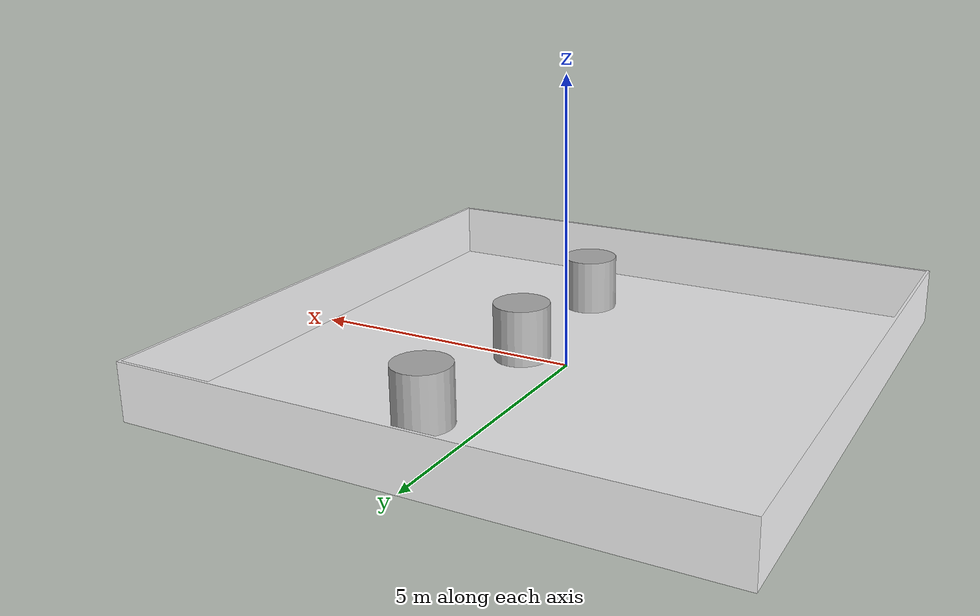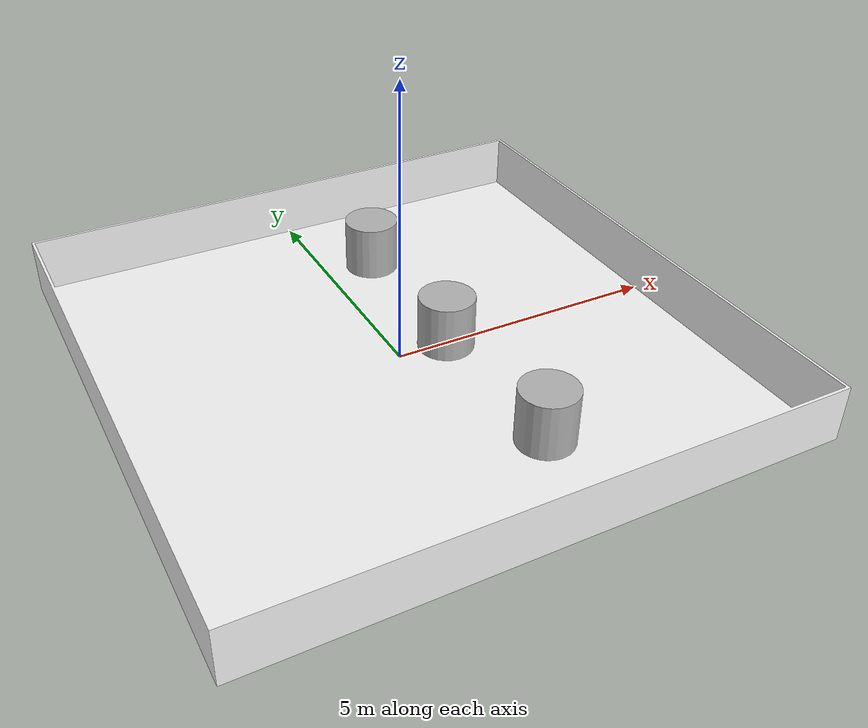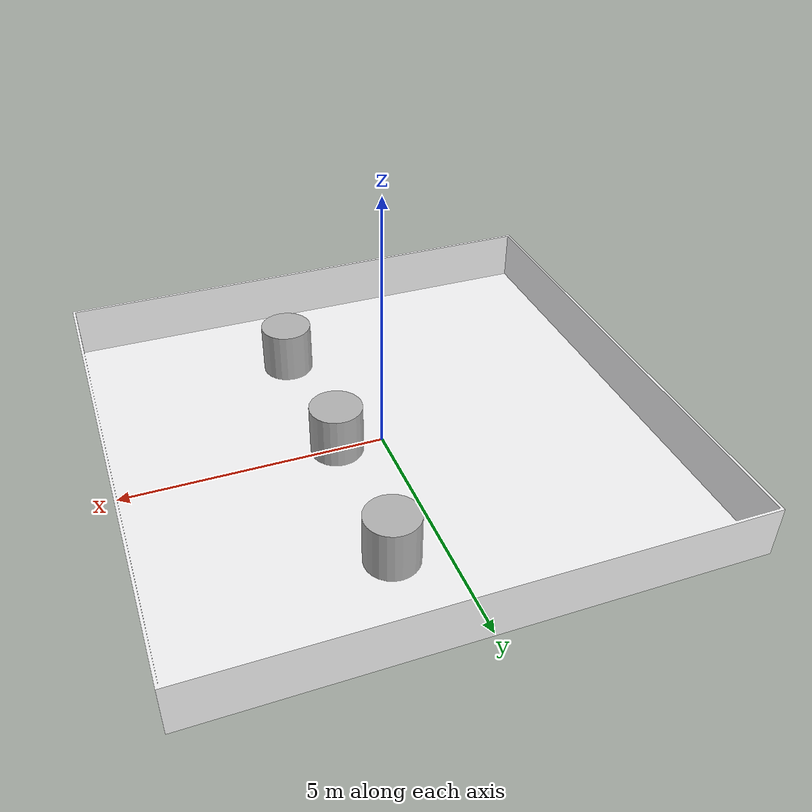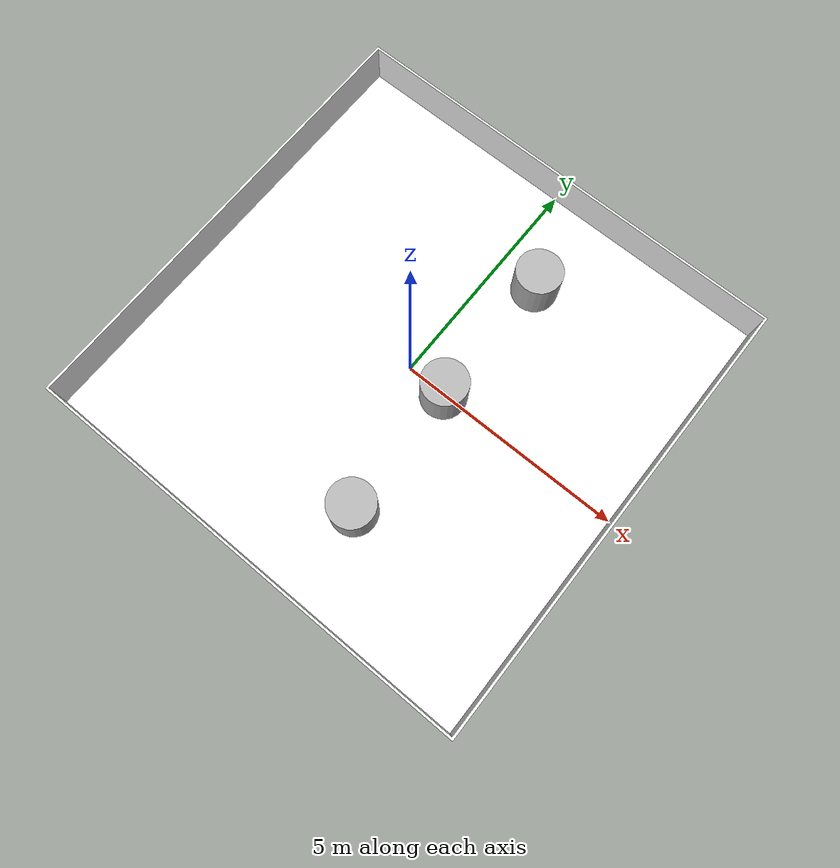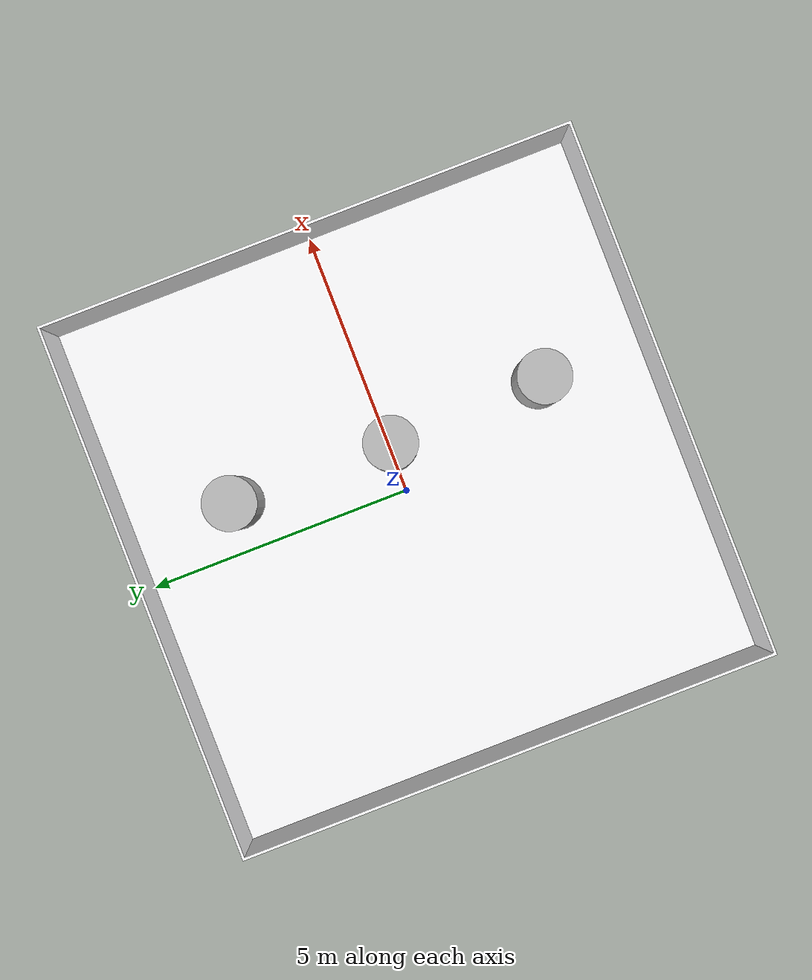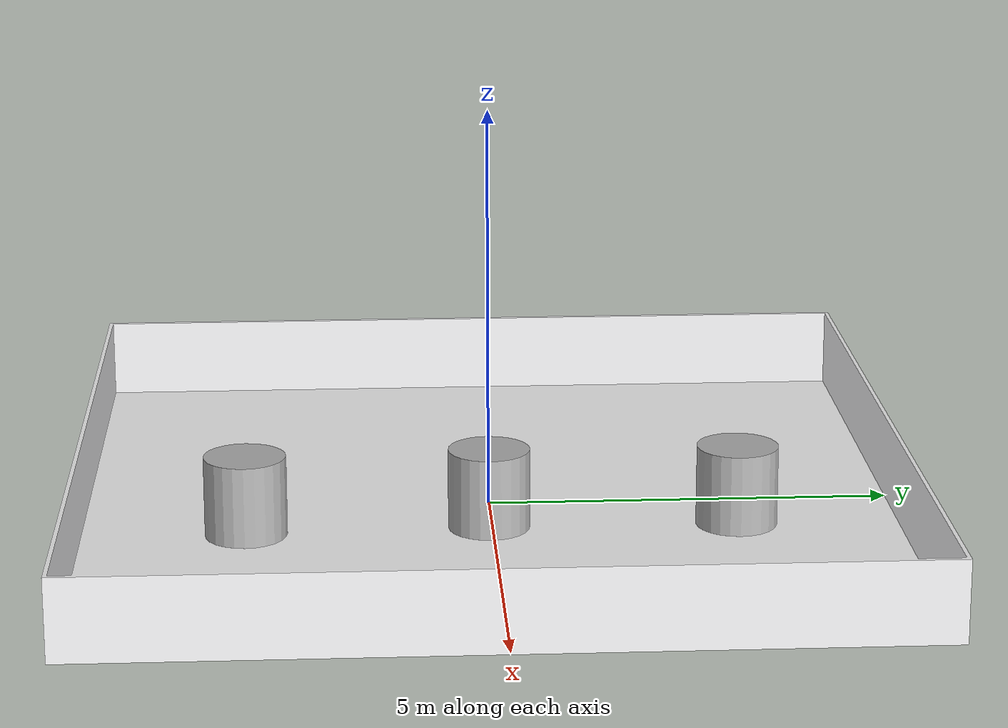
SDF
<sdf version='1.10'>
  <world name='my_world'>
    <physics name='1ms' type='ignored'>
      <max_step_size>0.001</max_step_size>
      <real_time_factor>1</real_time_factor>
      <real_time_update_rate>1000</real_time_update_rate>
    </physics>
    <plugin name='gz::sim::systems::Physics' filename='gz-sim-physics-system'/>
    <plugin name='gz::sim::systems::UserCommands' filename='gz-sim-user-commands-system'/>
    <plugin name='gz::sim::systems::SceneBroadcaster' filename='gz-sim-scene-broadcaster-system'/>
    <plugin name='gz::sim::systems::Sensors' filename='gz-sim-sensors-system'>
      <render_engine>ogre2</render_engine>
    </plugin>
    <gravity>0 0 -9.8000000000000007</gravity>
    <magnetic_field>5.5644999999999998e-06 2.2875799999999999e-05 -4.2388400000000002e-05</magnetic_field>
    <atmosphere type='adiabatic'/>
    <scene>
      <ambient>0.400000006 0.400000006 0.400000006 1</ambient>
      <background>0.699999988 0.699999988 0.699999988 1</background>
      <shadows>true</shadows>
    </scene>
    <model name='measurement'>
      <static>true</static>
      <link name='link'>
        <collision name='collision'>
          <geometry>
            <mesh>
              <scale>1 1 1</scale>
              <uri>file:///home/sarukiti/gng_ws/install/simple_diff_drive_sim/share/simple_diff_drive_sim/worlds/meshes/field_v3.stl</uri>
            </mesh>
          </geometry>
          <surface>
            <friction>
              <ode>
                <mu>1.2</mu>
                <mu2>1.2</mu2>
              </ode>
            </friction>
          </surface>
        </collision>
        <visual name='visual'>
          <geometry>
            <mesh>
              <scale>1 1 1</scale>
              <uri>file:///home/sarukiti/gng_ws/install/simple_diff_drive_sim/share/simple_diff_drive_sim/worlds/meshes/field_v3.dae</uri>
            </mesh>
          </geometry>
        </visual>
        <pose>0 0 0 0 0 0</pose>
        <inertial>
          <pose>0 0 0 0 0 0</pose>
          <mass>1</mass>
          <inertia>
            <ixx>1</ixx>
            <ixy>0</ixy>
            <ixz>0</ixz>
            <iyy>1</iyy>
            <iyz>0</iyz>
            <izz>1</izz>
          </inertia>
        </inertial>
        <enable_wind>false</enable_wind>
      </link>
      <pose>0 0 0 0 0 0</pose>
      <self_collide>false</self_collide>
    </model>
    <model name='cylinder'>
      <pose>0.92057683221437259 3.0017914668384198 0.49999906853903248 -1.1682561922699063e-07 -1.8019303234000646e-19 2.261963531053506e-19</pose>
      <link name='cylinder_link'>
        <inertial>
          <inertia>
            <ixx>0.14580000000000001</ixx>
            <ixy>0</ixy>
            <ixz>0</ixz>
            <iyy>0.14580000000000001</iyy>
            <iyz>0</iyz>
            <izz>0.125</izz>
          </inertia>
          <mass>1</mass>
          <pose>0 0 0 0 0 0</pose>
        </inertial>
        <collision name='cylinder_collision'>
          <geometry>
            <cylinder>
              <radius>0.5</radius>
              <length>1</length>
            </cylinder>
          </geometry>
          <surface>
            <friction>
              <ode/>
            </friction>
            <bounce/>
            <contact/>
          </surface>
        </collision>
        <visual name='cylinder_visual'>
          <geometry>
            <cylinder>
              <radius>0.5</radius>
              <length>1</length>
            </cylinder>
          </geometry>
          <material>
            <ambient>0.300000012 0.300000012 0.300000012 1</ambient>
            <diffuse>0.699999988 0.699999988 0.699999988 1</diffuse>
            <specular>1 1 1 1</specular>
          </material>
        </visual>
        <pose>0 0 0 0 0 0</pose>
        <enable_wind>false</enable_wind>
      </link>
      <static>true</static>
      <self_collide>false</self_collide>
    </model>
    <model name='cylinder_0'>
      <pose>0.88743959894522106 -0.036249826410841277 0.49999943661772817 -1.2791901602085456e-07 6.4093827024032537e-17 1.8200698772962147e-17</pose>
      <link name='cylinder_link'>
        <inertial>
          <inertia>
            <ixx>0.14580000000000001</ixx>
            <ixy>0</ixy>
            <ixz>0</ixz>
            <iyy>0.14580000000000001</iyy>
            <iyz>0</iyz>
            <izz>0.125</izz>
          </inertia>
          <mass>1</mass>
          <pose>0 0 0 0 0 0</pose>
        </inertial>
        <collision name='cylinder_collision'>
          <geometry>
            <cylinder>
              <radius>0.5</radius>
              <length>1</length>
            </cylinder>
          </geometry>
          <surface>
            <friction>
              <ode/>
            </friction>
            <bounce/>
            <contact/>
          </surface>
        </collision>
        <visual name='cylinder_visual'>
          <geometry>
            <cylinder>
              <radius>0.5</radius>
              <length>1</length>
            </cylinder>
          </geometry>
          <material>
            <ambient>0.300000012 0.300000012 0.300000012 1</ambient>
            <diffuse>0.699999988 0.699999988 0.699999988 1</diffuse>
            <specular>1 1 1 1</specular>
          </material>
        </visual>
        <pose>0 0 0 0 0 0</pose>
        <enable_wind>false</enable_wind>
      </link>
      <static>true</static>
      <self_collide>false</self_collide>
    </model>
    <model name='cylinder_1'>
      <pose>1.0051635813461246 -2.9979456023218183 0.49999978375846665 -1.1762336593615706e-07 3.9265626445935771e-19 4.2623188402858011e-19</pose>
      <link name='cylinder_link'>
        <inertial>
          <inertia>
            <ixx>0.14580000000000001</ixx>
            <ixy>0</ixy>
            <ixz>0</ixz>
            <iyy>0.14580000000000001</iyy>
            <iyz>0</iyz>
            <izz>0.125</izz>
          </inertia>
          <mass>1</mass>
          <pose>0 0 0 0 0 0</pose>
        </inertial>
        <collision name='cylinder_collision'>
          <geometry>
            <cylinder>
              <radius>0.5</radius>
              <length>1</length>
            </cylinder>
          </geometry>
          <surface>
            <friction>
              <ode/>
            </friction>
            <bounce/>
            <contact/>
          </surface>
        </collision>
        <visual name='cylinder_visual'>
          <geometry>
            <cylinder>
              <radius>0.5</radius>
              <length>1</length>
            </cylinder>
          </geometry>
          <material>
            <ambient>0.300000012 0.300000012 0.300000012 1</ambient>
            <diffuse>0.699999988 0.699999988 0.699999988 1</diffuse>
            <specular>1 1 1 1</specular>
          </material>
        </visual>
        <pose>0 0 0 0 0 0</pose>
        <enable_wind>false</enable_wind>
      </link>
      <static>true</static>
      <self_collide>false</self_collide>
    </model>
    <light name='sun' type='directional'>
      <pose>0 0 10 0 0 0</pose>
      <cast_shadows>true</cast_shadows>
      <intensity>1</intensity>
      <direction>-0.5 0.10000000000000001 -0.90000000000000002</direction>
      <diffuse>0.800000012 0.800000012 0.800000012 1</diffuse>
      <specular>0.200000003 0.200000003 0.200000003 1</specular>
      <attenuation>
        <range>1000</range>
        <linear>0.01</linear>
        <constant>0.90000000000000002</constant>
        <quadratic>0.001</quadratic>
      </attenuation>
      <spot>
        <inner_angle>0</inner_angle>
        <outer_angle>0</outer_angle>
        <falloff>0</falloff>
      </spot>
    </light>
  </world>
</sdf>
